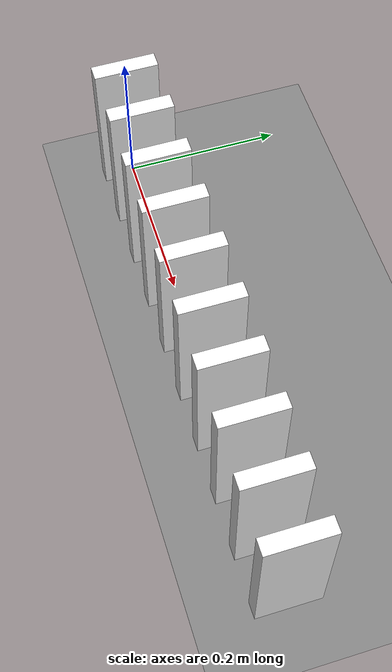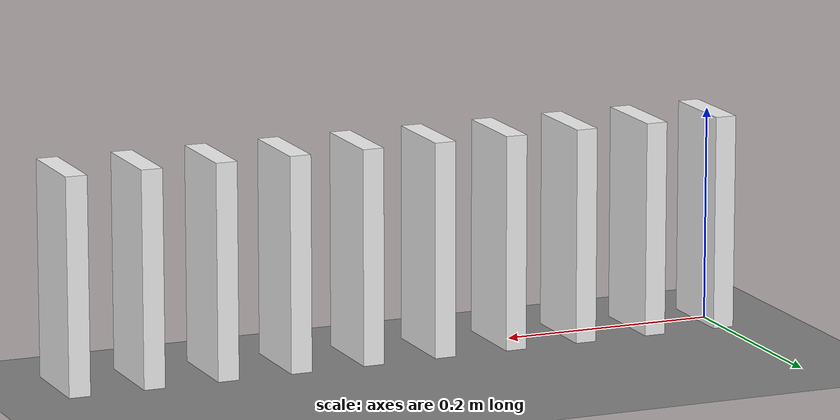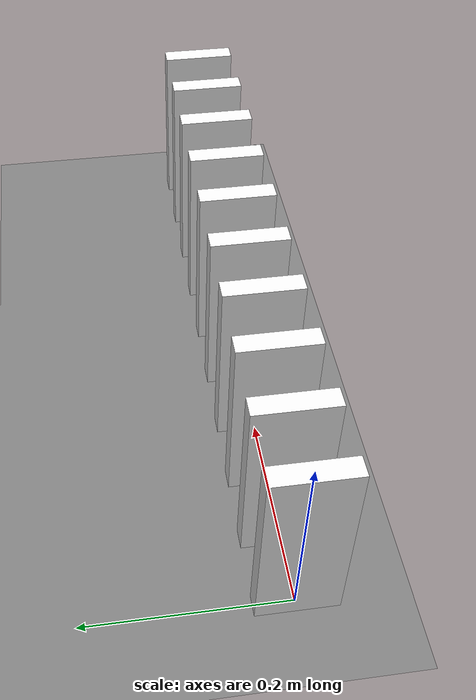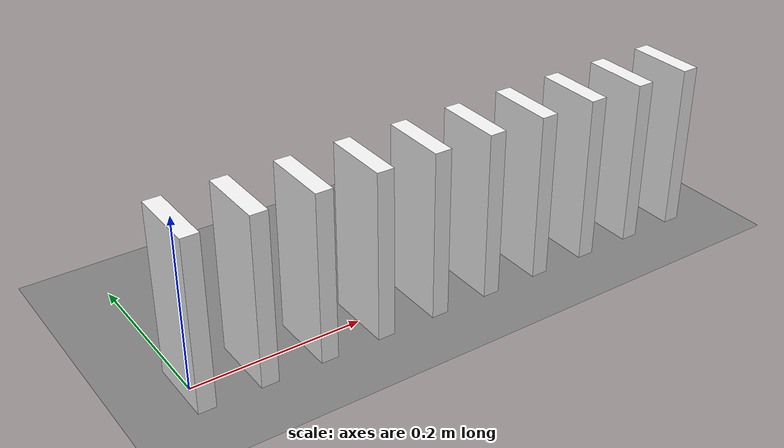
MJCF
<mujoco model="ten_falling_dominoes">
  <compiler angle="radian"/>
  <option timestep="0.002"/>
  <worldbody>
    <geom name="floor" type="plane" size="4 4 0.1" friction="0.8 0.001 0.0001"/>
    <body name="domino1" pos="0 0 0.1">
      <freejoint/>
      <geom name="domino1" type="box" pos="0 0 0" size="0.01 0.04 0.1" mass="0.2" friction="0.8 0.001 0.0001" solref="0.01 1" rgba="0.95 0.95 0.95 1"/>
    </body>
    <body name="domino2" pos="0.07 0 0.1">
      <freejoint/>
      <geom name="domino2" type="box" pos="0 0 0" size="0.01 0.04 0.1" mass="0.2" friction="0.8 0.001 0.0001" solref="0.01 1" rgba="0.95 0.95 0.95 1"/>
    </body>
    <body name="domino3" pos="0.14 0 0.1">
      <freejoint/>
      <geom name="domino3" type="box" pos="0 0 0" size="0.01 0.04 0.1" mass="0.2" friction="0.8 0.001 0.0001" solref="0.01 1" rgba="0.95 0.95 0.95 1"/>
    </body>
    <body name="domino4" pos="0.21 0 0.1">
      <freejoint/>
      <geom name="domino4" type="box" pos="0 0 0" size="0.01 0.04 0.1" mass="0.2" friction="0.8 0.001 0.0001" solref="0.01 1" rgba="0.95 0.95 0.95 1"/>
    </body>
    <body name="domino5" pos="0.28 0 0.1">
      <freejoint/>
      <geom name="domino5" type="box" pos="0 0 0" size="0.01 0.04 0.1" mass="0.2" friction="0.8 0.001 0.0001" solref="0.01 1" rgba="0.95 0.95 0.95 1"/>
    </body>
    <body name="domino6" pos="0.35 0 0.1">
      <freejoint/>
      <geom name="domino6" type="box" pos="0 0 0" size="0.01 0.04 0.1" mass="0.2" friction="0.8 0.001 0.0001" solref="0.01 1" rgba="0.95 0.95 0.95 1"/>
    </body>
    <body name="domino7" pos="0.42 0 0.1">
      <freejoint/>
      <geom name="domino7" type="box" pos="0 0 0" size="0.01 0.04 0.1" mass="0.2" friction="0.8 0.001 0.0001" solref="0.01 1" rgba="0.95 0.95 0.95 1"/>
    </body>
    <body name="domino8" pos="0.49 0 0.1">
      <freejoint/>
      <geom name="domino8" type="box" pos="0 0 0" size="0.01 0.04 0.1" mass="0.2" friction="0.8 0.001 0.0001" solref="0.01 1" rgba="0.95 0.95 0.95 1"/>
    </body>
    <body name="domino9" pos="0.56 0 0.1">
      <freejoint/>
      <geom name="domino9" type="box" pos="0 0 0" size="0.01 0.04 0.1" mass="0.2" friction="0.8 0.001 0.0001" solref="0.01 1" rgba="0.95 0.95 0.95 1"/>
    </body>
    <body name="domino10" pos="0.63 0 0.1">
      <freejoint/>
      <geom name="domino10" type="box" pos="0 0 0" size="0.01 0.04 0.1" mass="0.2" friction="0.8 0.001 0.0001" solref="0.01 1" rgba="0.95 0.95 0.95 1"/>
    </body>
  </worldbody>
  <keyframe>
    <key name="start" qpos="0 0 0.1 1 0 0 0 0.07 0 0.1 1 0 0 0 0.14 0 0.1 1 0 0 0 0.21 0 0.1 1 0 0 0 0.28 0 0.1 1 0 0 0 0.35 0 0.1 1 0 0 0 0.42 0 0.1 1 0 0 0 0.49 0 0.1 1 0 0 0 0.56 0 0.1 1 0 0 0 0.63 0 0.1 1 0 0 0" qvel="0 0 0 0 5 0 0 0 0 0 0 0 0 0 0 0 0 0 0 0 0 0 0 0 0 0 0 0 0 0 0 0 0 0 0 0 0 0 0 0 0 0 0 0 0 0 0 0 0 0 0 0 0 0 0 0 0 0 0 0"/>
  </keyframe>
</mujoco>
